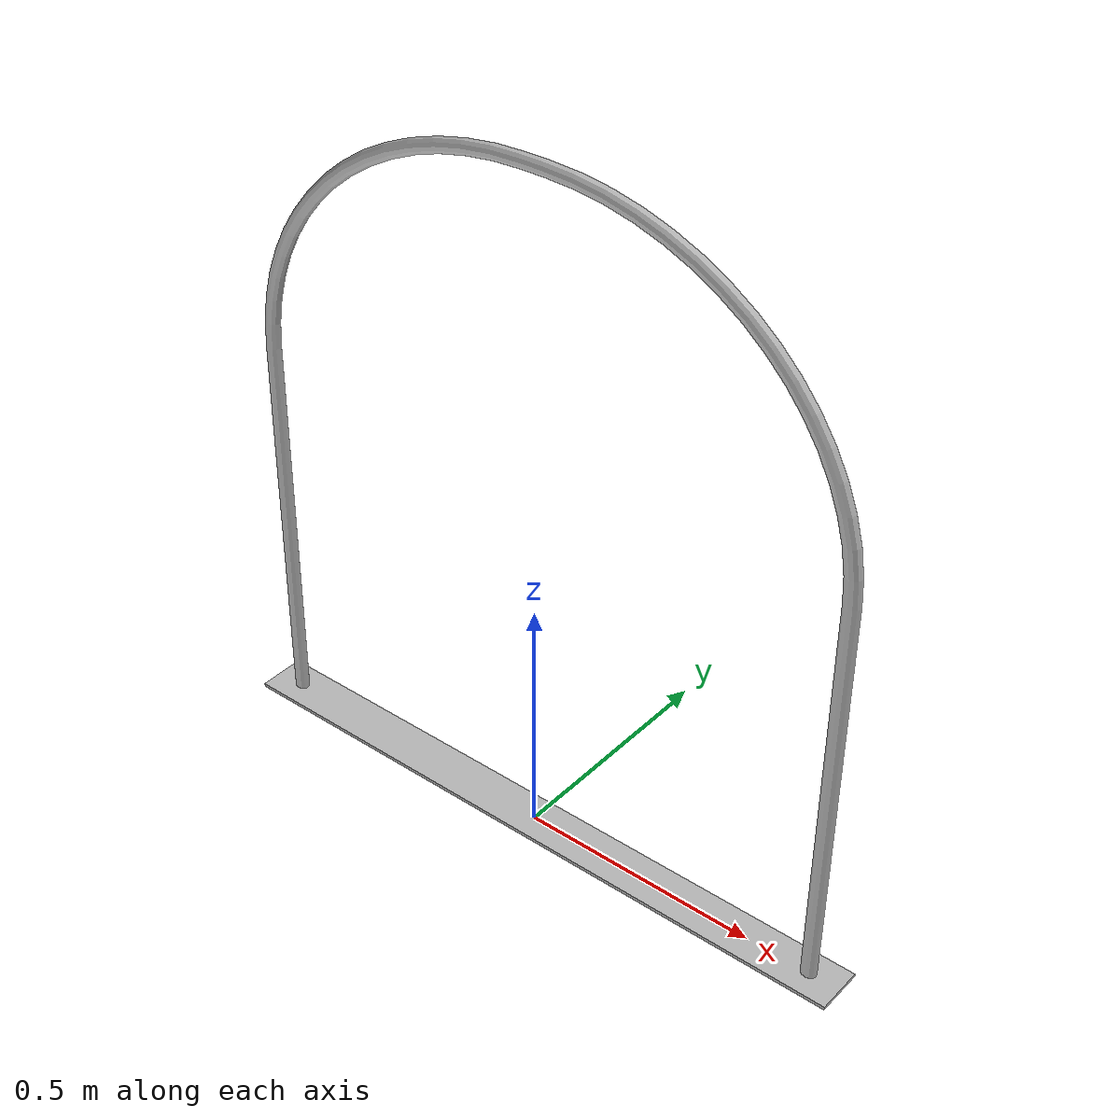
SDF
<?xml version="1.0"?>
<sdf version="1.6">
  <model name="hoop">
    <static>true</static>
    <link name="hoop_link">
      <visual name="body_visual">
      	<geometry>
          <mesh><uri>meshes/hoop.dae</uri></mesh>
        </geometry>
      </visual>
      <collision name="body_collision">
      	<geometry>
          <mesh><uri>meshes/hoop.dae</uri></mesh>
        </geometry>
      </collision>
    </link>
  </model>
</sdf>
